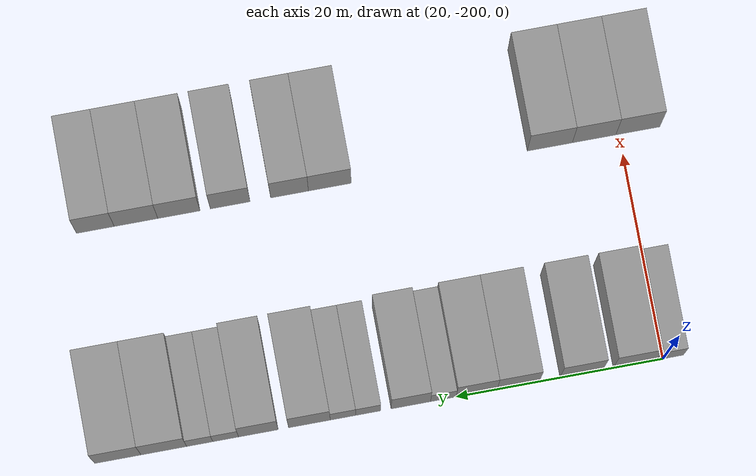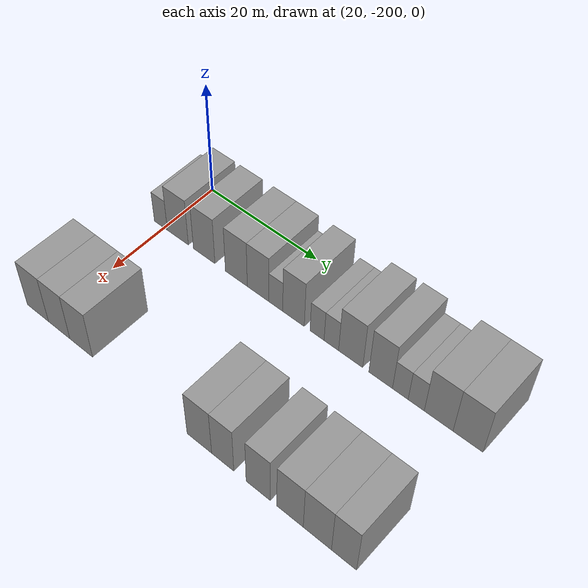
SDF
<sdf version="1.6">
 <world name="default">
  <model name="building_1">
   <static>1</static>
   <pose>25.0000 -200.6891 0 0.000000 0.000000 0.000000</pose>
   <link name="link">
    <pose>0 0 3.00 0 0 0</pose>
    <collision name="collision"><geometry><box><size>10.0000 2.6218 6.0000</size></box></geometry></collision>
    <visual name="visual">
     <cast_shadows>0</cast_shadows>
     <geometry><box><size>10.0000 2.6218 6.0000</size></box></geometry>
     <material>
      <script>
       <uri>model://grey_wall/materials/scripts</uri>
       <uri>model://grey_wall/materials/textures</uri>
       <name>vrc/grey_wall</name>
      </script>
     </material>
    </visual>
   </link>
  </model>
  <model name="building_2">
   <static>1</static>
   <pose>25.0000 -197.2870 0 0.000000 0.000000 0.000000</pose>
   <link name="link">
    <pose>0 0 4.50 0 0 0</pose>
    <collision name="collision"><geometry><box><size>10.0000 4.1824 9.0000</size></box></geometry></collision>
    <visual name="visual">
     <cast_shadows>0</cast_shadows>
     <geometry><box><size>10.0000 4.1824 9.0000</size></box></geometry>
     <material>
      <script>
       <uri>model://grey_wall/materials/scripts</uri>
       <uri>model://grey_wall/materials/textures</uri>
       <name>vrc/grey_wall</name>
      </script>
     </material>
    </visual>
   </link>
  </model>
  <model name="building_3">
   <static>1</static>
   <pose>25.0000 -192.1201 0 0.000000 0.000000 0.000000</pose>
   <link name="link">
    <pose>0 0 4.50 0 0 0</pose>
    <collision name="collision"><geometry><box><size>10.0000 4.1514 9.0000</size></box></geometry></collision>
    <visual name="visual">
     <cast_shadows>0</cast_shadows>
     <geometry><box><size>10.0000 4.1514 9.0000</size></box></geometry>
     <material>
      <script>
       <uri>model://grey_wall/materials/scripts</uri>
       <uri>model://grey_wall/materials/textures</uri>
       <name>vrc/grey_wall</name>
      </script>
     </material>
    </visual>
   </link>
  </model>
  <model name="building_4">
   <static>1</static>
   <pose>25.0000 -185.9952 0 0.000000 0.000000 0.000000</pose>
   <link name="link">
    <pose>0 0 4.50 0 0 0</pose>
    <collision name="collision"><geometry><box><size>10.0000 4.0984 9.0000</size></box></geometry></collision>
    <visual name="visual">
     <cast_shadows>0</cast_shadows>
     <geometry><box><size>10.0000 4.0984 9.0000</size></box></geometry>
     <material>
      <script>
       <uri>model://grey_wall/materials/scripts</uri>
       <uri>model://grey_wall/materials/textures</uri>
       <name>vrc/grey_wall</name>
      </script>
     </material>
    </visual>
   </link>
  </model>
  <model name="building_5">
   <static>1</static>
   <pose>25.0000 -181.9679 0 0.000000 0.000000 0.000000</pose>
   <link name="link">
    <pose>0 0 4.50 0 0 0</pose>
    <collision name="collision"><geometry><box><size>10.0000 3.9561 9.0000</size></box></geometry></collision>
    <visual name="visual">
     <cast_shadows>0</cast_shadows>
     <geometry><box><size>10.0000 3.9561 9.0000</size></box></geometry>
     <material>
      <script>
       <uri>model://grey_wall/materials/scripts</uri>
       <uri>model://grey_wall/materials/textures</uri>
       <name>vrc/grey_wall</name>
      </script>
     </material>
    </visual>
   </link>
  </model>
  <model name="building_6">
   <static>1</static>
   <pose>25.0000 -178.7578 0 0.000000 0.000000 0.000000</pose>
   <link name="link">
    <pose>0 0 3.00 0 0 0</pose>
    <collision name="collision"><geometry><box><size>10.0000 2.4642 6.0000</size></box></geometry></collision>
    <visual name="visual">
     <cast_shadows>0</cast_shadows>
     <geometry><box><size>10.0000 2.4642 6.0000</size></box></geometry>
     <material>
      <script>
       <uri>model://grey_wall/materials/scripts</uri>
       <uri>model://grey_wall/materials/textures</uri>
       <name>vrc/grey_wall</name>
      </script>
     </material>
    </visual>
   </link>
  </model>
  <model name="building_7">
   <static>1</static>
   <pose>25.0000 -175.6219 0 0.000000 0.000000 0.000000</pose>
   <link name="link">
    <pose>0 0 4.50 0 0 0</pose>
    <collision name="collision"><geometry><box><size>10.0000 3.8075 9.0000</size></box></geometry></collision>
    <visual name="visual">
     <cast_shadows>0</cast_shadows>
     <geometry><box><size>10.0000 3.8075 9.0000</size></box></geometry>
     <material>
      <script>
       <uri>model://grey_wall/materials/scripts</uri>
       <uri>model://grey_wall/materials/textures</uri>
       <name>vrc/grey_wall</name>
      </script>
     </material>
    </visual>
   </link>
  </model>
  <model name="building_8">
   <static>1</static>
   <pose>25.0000 -171.5128 0 0.000000 0.000000 0.000000</pose>
   <link name="link">
    <pose>0 0 3.00 0 0 0</pose>
    <collision name="collision"><geometry><box><size>10.0000 2.4107 6.0000</size></box></geometry></collision>
    <visual name="visual">
     <cast_shadows>0</cast_shadows>
     <geometry><box><size>10.0000 2.4107 6.0000</size></box></geometry>
     <material>
      <script>
       <uri>model://grey_wall/materials/scripts</uri>
       <uri>model://grey_wall/materials/textures</uri>
       <name>vrc/grey_wall</name>
      </script>
     </material>
    </visual>
   </link>
  </model>
  <model name="building_9">
   <static>1</static>
   <pose>25.0000 -169.0757 0 0.000000 0.000000 0.000000</pose>
   <link name="link">
    <pose>0 0 3.00 0 0 0</pose>
    <collision name="collision"><geometry><box><size>10.0000 2.4634 6.0000</size></box></geometry></collision>
    <visual name="visual">
     <cast_shadows>0</cast_shadows>
     <geometry><box><size>10.0000 2.4634 6.0000</size></box></geometry>
     <material>
      <script>
       <uri>model://grey_wall/materials/scripts</uri>
       <uri>model://grey_wall/materials/textures</uri>
       <name>vrc/grey_wall</name>
      </script>
     </material>
    </visual>
   </link>
  </model>
  <model name="building_10">
   <static>1</static>
   <pose>25.0000 -165.8358 0 0.000000 0.000000 0.000000</pose>
   <link name="link">
    <pose>0 0 4.50 0 0 0</pose>
    <collision name="collision"><geometry><box><size>10.0000 4.0163 9.0000</size></box></geometry></collision>
    <visual name="visual">
     <cast_shadows>0</cast_shadows>
     <geometry><box><size>10.0000 4.0163 9.0000</size></box></geometry>
     <material>
      <script>
       <uri>model://grey_wall/materials/scripts</uri>
       <uri>model://grey_wall/materials/textures</uri>
       <name>vrc/grey_wall</name>
      </script>
     </material>
    </visual>
   </link>
  </model>
  <model name="building_11">
   <static>1</static>
   <pose>25.0000 -160.9196 0 0.000000 0.000000 0.000000</pose>
   <link name="link">
    <pose>0 0 4.50 0 0 0</pose>
    <collision name="collision"><geometry><box><size>10.0000 3.8163 9.0000</size></box></geometry></collision>
    <visual name="visual">
     <cast_shadows>0</cast_shadows>
     <geometry><box><size>10.0000 3.8163 9.0000</size></box></geometry>
     <material>
      <script>
       <uri>model://grey_wall/materials/scripts</uri>
       <uri>model://grey_wall/materials/textures</uri>
       <name>vrc/grey_wall</name>
      </script>
     </material>
    </visual>
   </link>
  </model>
  <model name="building_12">
   <static>1</static>
   <pose>25.0000 -157.7685 0 0.000000 0.000000 0.000000</pose>
   <link name="link">
    <pose>0 0 3.00 0 0 0</pose>
    <collision name="collision"><geometry><box><size>10.0000 2.4858 6.0000</size></box></geometry></collision>
    <visual name="visual">
     <cast_shadows>0</cast_shadows>
     <geometry><box><size>10.0000 2.4858 6.0000</size></box></geometry>
     <material>
      <script>
       <uri>model://grey_wall/materials/scripts</uri>
       <uri>model://grey_wall/materials/textures</uri>
       <name>vrc/grey_wall</name>
      </script>
     </material>
    </visual>
   </link>
  </model>
  <model name="building_13">
   <static>1</static>
   <pose>25.0000 -155.2720 0 0.000000 0.000000 0.000000</pose>
   <link name="link">
    <pose>0 0 3.00 0 0 0</pose>
    <collision name="collision"><geometry><box><size>10.0000 2.5074 6.0000</size></box></geometry></collision>
    <visual name="visual">
     <cast_shadows>0</cast_shadows>
     <geometry><box><size>10.0000 2.5074 6.0000</size></box></geometry>
     <material>
      <script>
       <uri>model://grey_wall/materials/scripts</uri>
       <uri>model://grey_wall/materials/textures</uri>
       <name>vrc/grey_wall</name>
      </script>
     </material>
    </visual>
   </link>
  </model>
  <model name="building_14">
   <static>1</static>
   <pose>25.0000 -151.8228 0 0.000000 0.000000 0.000000</pose>
   <link name="link">
    <pose>0 0 4.50 0 0 0</pose>
    <collision name="collision"><geometry><box><size>10.0000 4.3909 9.0000</size></box></geometry></collision>
    <visual name="visual">
     <cast_shadows>0</cast_shadows>
     <geometry><box><size>10.0000 4.3909 9.0000</size></box></geometry>
     <material>
      <script>
       <uri>model://grey_wall/materials/scripts</uri>
       <uri>model://grey_wall/materials/textures</uri>
       <name>vrc/grey_wall</name>
      </script>
     </material>
    </visual>
   </link>
  </model>
  <model name="building_15">
   <static>1</static>
   <pose>25.0000 -147.3984 0 0.000000 0.000000 0.000000</pose>
   <link name="link">
    <pose>0 0 4.50 0 0 0</pose>
    <collision name="collision"><geometry><box><size>10.0000 4.4581 9.0000</size></box></geometry></collision>
    <visual name="visual">
     <cast_shadows>0</cast_shadows>
     <geometry><box><size>10.0000 4.4581 9.0000</size></box></geometry>
     <material>
      <script>
       <uri>model://grey_wall/materials/scripts</uri>
       <uri>model://grey_wall/materials/textures</uri>
       <name>vrc/grey_wall</name>
      </script>
     </material>
    </visual>
   </link>
  </model>
  <model name="building_103">
   <static>1</static>
   <pose>47.0000 -201.8520 0 0.000000 0.000000 0.000000</pose>
   <link name="link">
    <pose>0 0 4.50 0 0 0</pose>
    <collision name="collision"><geometry><box><size>10.0000 4.2960 9.0000</size></box></geometry></collision>
    <visual name="visual">
     <cast_shadows>0</cast_shadows>
     <geometry><box><size>10.0000 4.2960 9.0000</size></box></geometry>
     <material>
      <script>
       <uri>model://grey_wall/materials/scripts</uri>
       <uri>model://grey_wall/materials/textures</uri>
       <name>vrc/grey_wall</name>
      </script>
     </material>
    </visual>
   </link>
  </model>
  <model name="building_104">
   <static>1</static>
   <pose>47.0000 -197.5798 0 0.000000 0.000000 0.000000</pose>
   <link name="link">
    <pose>0 0 4.50 0 0 0</pose>
    <collision name="collision"><geometry><box><size>10.0000 4.2483 9.0000</size></box></geometry></collision>
    <visual name="visual">
     <cast_shadows>0</cast_shadows>
     <geometry><box><size>10.0000 4.2483 9.0000</size></box></geometry>
     <material>
      <script>
       <uri>model://grey_wall/materials/scripts</uri>
       <uri>model://grey_wall/materials/textures</uri>
       <name>vrc/grey_wall</name>
      </script>
     </material>
    </visual>
   </link>
  </model>
  <model name="building_105">
   <static>1</static>
   <pose>47.0000 -193.2596 0 0.000000 0.000000 0.000000</pose>
   <link name="link">
    <pose>0 0 4.50 0 0 0</pose>
    <collision name="collision"><geometry><box><size>10.0000 4.3921 9.0000</size></box></geometry></collision>
    <visual name="visual">
     <cast_shadows>0</cast_shadows>
     <geometry><box><size>10.0000 4.3921 9.0000</size></box></geometry>
     <material>
      <script>
       <uri>model://grey_wall/materials/scripts</uri>
       <uri>model://grey_wall/materials/textures</uri>
       <name>vrc/grey_wall</name>
      </script>
     </material>
    </visual>
   </link>
  </model>
  <model name="building_106">
   <static>1</static>
   <pose>47.0000 -171.8290 0 0.000000 0.000000 0.000000</pose>
   <link name="link">
    <pose>0 0 4.50 0 0 0</pose>
    <collision name="collision"><geometry><box><size>10.0000 4.1564 9.0000</size></box></geometry></collision>
    <visual name="visual">
     <cast_shadows>0</cast_shadows>
     <geometry><box><size>10.0000 4.1564 9.0000</size></box></geometry>
     <material>
      <script>
       <uri>model://grey_wall/materials/scripts</uri>
       <uri>model://grey_wall/materials/textures</uri>
       <name>vrc/grey_wall</name>
      </script>
     </material>
    </visual>
   </link>
  </model>
  <model name="building_107">
   <static>1</static>
   <pose>47.0000 -167.9172 0 0.000000 0.000000 0.000000</pose>
   <link name="link">
    <pose>0 0 4.50 0 0 0</pose>
    <collision name="collision"><geometry><box><size>10.0000 3.6672 9.0000</size></box></geometry></collision>
    <visual name="visual">
     <cast_shadows>0</cast_shadows>
     <geometry><box><size>10.0000 3.6672 9.0000</size></box></geometry>
     <material>
      <script>
       <uri>model://grey_wall/materials/scripts</uri>
       <uri>model://grey_wall/materials/textures</uri>
       <name>vrc/grey_wall</name>
      </script>
     </material>
    </visual>
   </link>
  </model>
  <model name="building_108">
   <static>1</static>
   <pose>47.0000 -162.1541 0 0.000000 0.000000 0.000000</pose>
   <link name="link">
    <pose>0 0 4.50 0 0 0</pose>
    <collision name="collision"><geometry><box><size>10.0000 3.8590 9.0000</size></box></geometry></collision>
    <visual name="visual">
     <cast_shadows>0</cast_shadows>
     <geometry><box><size>10.0000 3.8590 9.0000</size></box></geometry>
     <material>
      <script>
       <uri>model://grey_wall/materials/scripts</uri>
       <uri>model://grey_wall/materials/textures</uri>
       <name>vrc/grey_wall</name>
      </script>
     </material>
    </visual>
   </link>
  </model>
  <model name="building_109">
   <static>1</static>
   <pose>47.0000 -157.1764 0 0.000000 0.000000 0.000000</pose>
   <link name="link">
    <pose>0 0 4.50 0 0 0</pose>
    <collision name="collision"><geometry><box><size>10.0000 4.0964 9.0000</size></box></geometry></collision>
    <visual name="visual">
     <cast_shadows>0</cast_shadows>
     <geometry><box><size>10.0000 4.0964 9.0000</size></box></geometry>
     <material>
      <script>
       <uri>model://grey_wall/materials/scripts</uri>
       <uri>model://grey_wall/materials/textures</uri>
       <name>vrc/grey_wall</name>
      </script>
     </material>
    </visual>
   </link>
  </model>
  <model name="building_110">
   <static>1</static>
   <pose>47.0000 -153.0147 0 0.000000 0.000000 0.000000</pose>
   <link name="link">
    <pose>0 0 4.50 0 0 0</pose>
    <collision name="collision"><geometry><box><size>10.0000 4.2272 9.0000</size></box></geometry></collision>
    <visual name="visual">
     <cast_shadows>0</cast_shadows>
     <geometry><box><size>10.0000 4.2272 9.0000</size></box></geometry>
     <material>
      <script>
       <uri>model://grey_wall/materials/scripts</uri>
       <uri>model://grey_wall/materials/textures</uri>
       <name>vrc/grey_wall</name>
      </script>
     </material>
    </visual>
   </link>
  </model>
  <model name="building_111">
   <static>1</static>
   <pose>47.0000 -149.0693 0 0.000000 0.000000 0.000000</pose>
   <link name="link">
    <pose>0 0 4.50 0 0 0</pose>
    <collision name="collision"><geometry><box><size>10.0000 3.6635 9.0000</size></box></geometry></collision>
    <visual name="visual">
     <cast_shadows>0</cast_shadows>
     <geometry><box><size>10.0000 3.6635 9.0000</size></box></geometry>
     <material>
      <script>
       <uri>model://grey_wall/materials/scripts</uri>
       <uri>model://grey_wall/materials/textures</uri>
       <name>vrc/grey_wall</name>
      </script>
     </material>
    </visual>
   </link>
  </model>
 </world>
</sdf>
